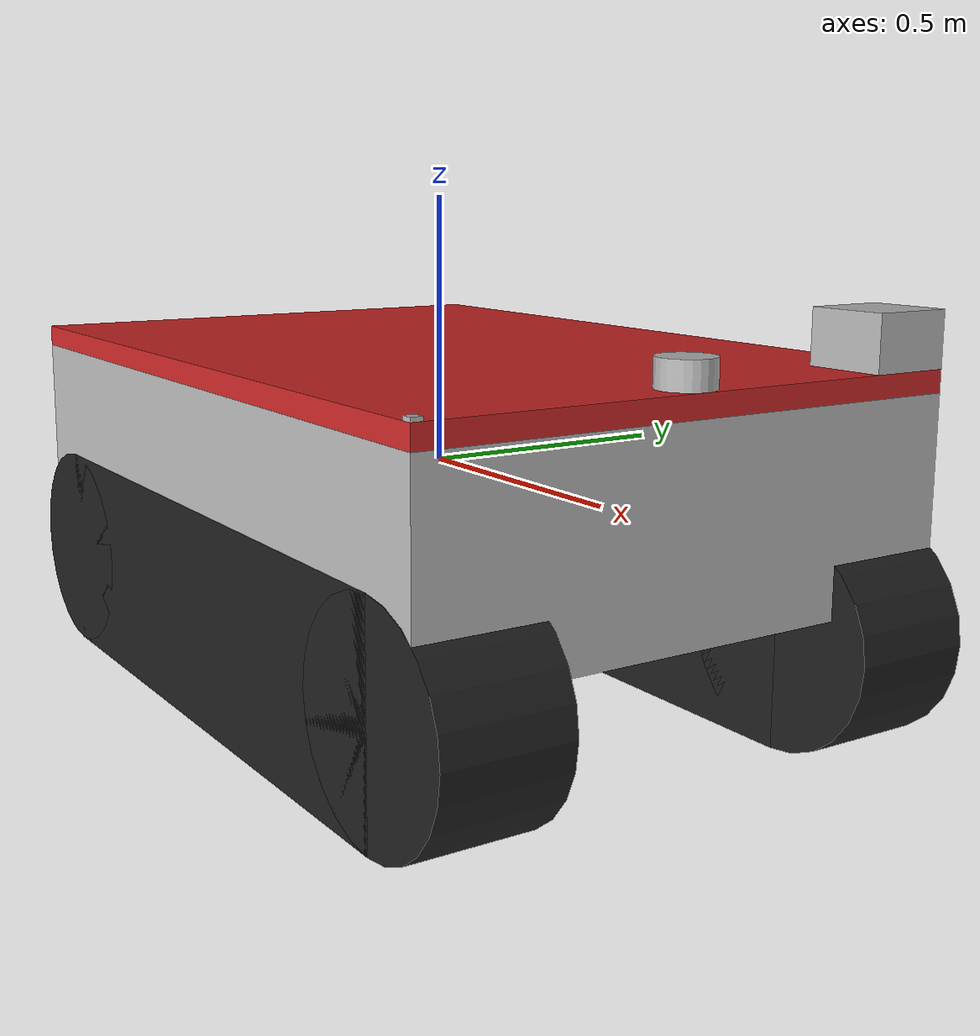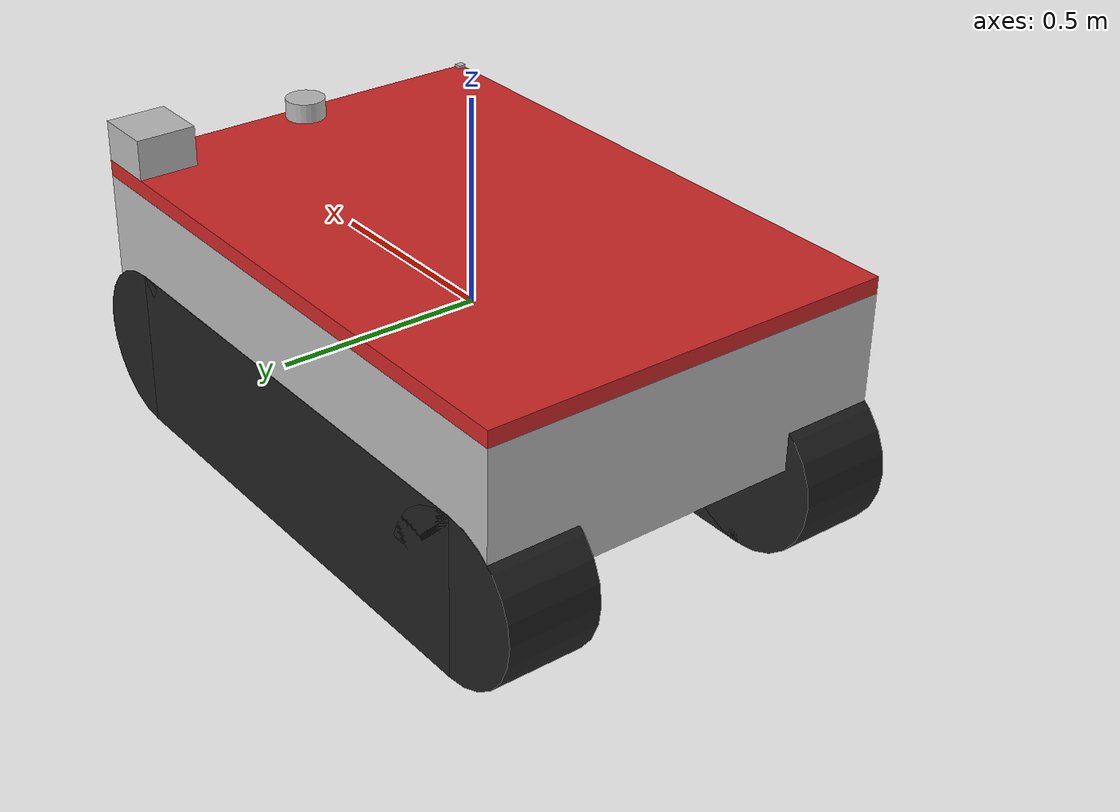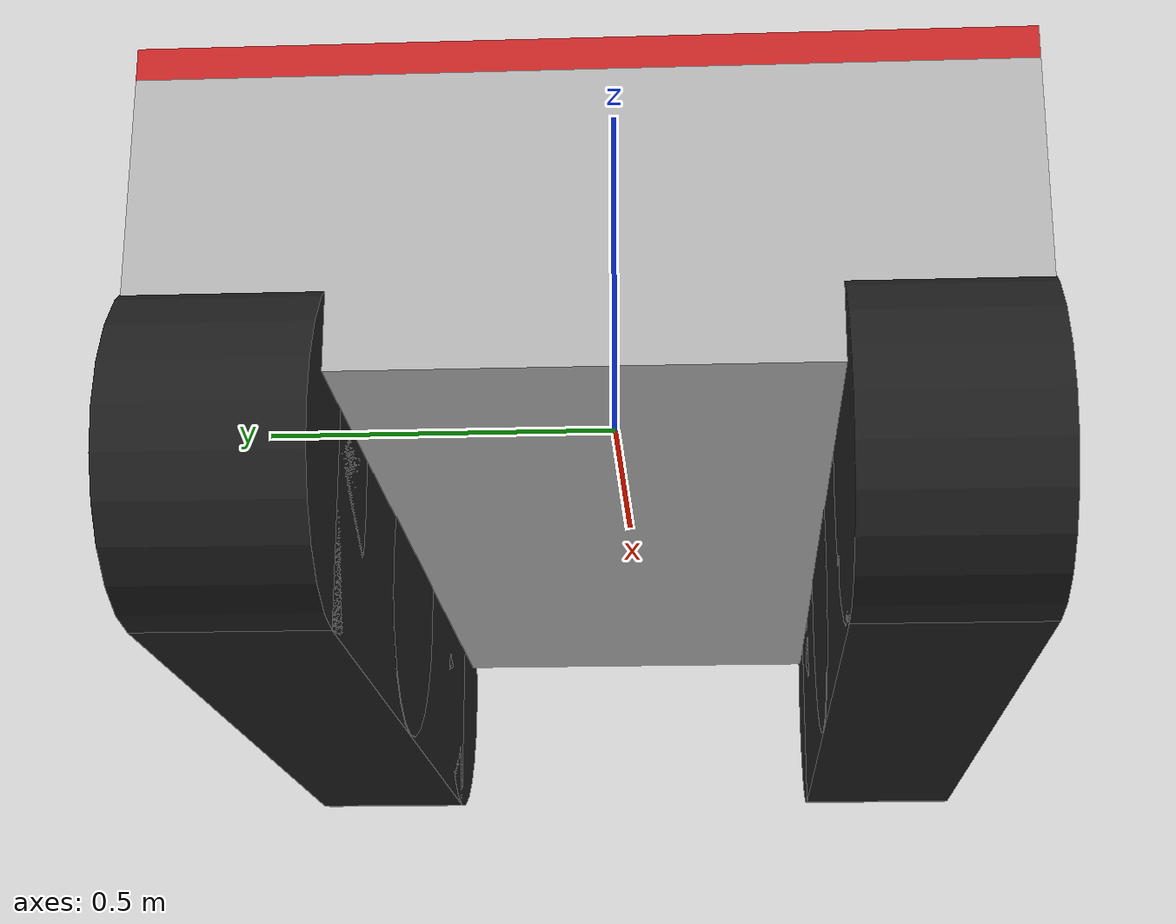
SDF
<sdf version='1.7'>
  <model name='my_robot'>
    <link name='base_link'>
      <inertial>
        <pose>0.007562 0.002963 -0.035161 1.5708 -0 1.5708</pose>
        <mass>262.9</mass>
        <inertia>
          <ixx>65.0051</ixx>
          <ixy>-0.242417</ixy>
          <ixz>-0.513369</ixz>
          <iyy>86.0756</iyy>
          <iyz>-0.587528</iyz>
          <izz>33.8241</izz>
        </inertia>
      </inertial>
      <collision name='base_link_collision'>
        <pose>0 0 0 0 -0 0</pose>
        <geometry>
          <box>
            <size>1.5 1.03 0.36</size>
          </box>
        </geometry>
      </collision>
      <collision name='base_link_fixed_joint_lump__left_wheel_box_link_collision_1'>
        <pose>0 0.401 -0.24 1.5708 -0 0</pose>
        <geometry>
          <box>
            <size>1.25 0.4 0.23</size>
          </box>
        </geometry>
        <surface>
          <contact>
            <ode/>
          </contact>
          <friction>
            <ode>
              <mu>0.1</mu>
              <mu2>0.1</mu2>
            </ode>
          </friction>
        </surface>
      </collision>
      <collision name='base_link_fixed_joint_lump__left_wheel_additional_f_wheel_link_collision_2'>
        <pose>0.625 0.401 -0.24 1.5708 -0 0</pose>
        <geometry>
          <cylinder>
            <length>0.23</length>
            <radius>0.2</radius>
          </cylinder>
        </geometry>
        <surface>
          <contact>
            <ode/>
          </contact>
          <friction>
            <ode>
              <mu>0.2</mu>
              <mu2>0.2</mu2>
            </ode>
          </friction>
        </surface>
      </collision>
      <collision name='base_link_fixed_joint_lump__left_wheel_additional_r_wheel_link_collision_3'>
        <pose>-0.625 0.401 -0.24 1.5708 -0 0</pose>
        <geometry>
          <cylinder>
            <length>0.23</length>
            <radius>0.2</radius>
          </cylinder>
        </geometry>
        <surface>
          <contact>
            <ode/>
          </contact>
          <friction>
            <ode>
              <mu>0.2</mu>
              <mu2>0.2</mu2>
            </ode>
          </friction>
        </surface>
      </collision>
      <collision name='base_link_fixed_joint_lump__plate_link_collision_4'>
        <pose>0 0 0.2 0 -0 0</pose>
        <geometry>
          <box>
            <size>1.5 1.03 0.04</size>
          </box>
        </geometry>
        <surface>
          <contact>
            <ode/>
          </contact>
          <friction>
            <ode/>
          </friction>
        </surface>
      </collision>
      <collision name='base_link_fixed_joint_lump__right_wheel_box_link_collision_5'>
        <pose>0 -0.401 -0.24 1.5708 -0 0</pose>
        <geometry>
          <box>
            <size>1.25 0.4 0.23</size>
          </box>
        </geometry>
        <surface>
          <contact>
            <ode/>
          </contact>
          <friction>
            <ode>
              <mu>0.1</mu>
              <mu2>0.1</mu2>
            </ode>
          </friction>
        </surface>
      </collision>
      <collision name='base_link_fixed_joint_lump__right_wheel_additional_f_wheel_link_collision_6'>
        <pose>0.625 -0.401 -0.24 1.5708 -0 0</pose>
        <geometry>
          <cylinder>
            <length>0.23</length>
            <radius>0.2</radius>
          </cylinder>
        </geometry>
        <surface>
          <contact>
            <ode/>
          </contact>
          <friction>
            <ode>
              <mu>0.2</mu>
              <mu2>0.2</mu2>
            </ode>
          </friction>
        </surface>
      </collision>
      <collision name='base_link_fixed_joint_lump__right_wheel_additional_r_wheel_link_collision_7'>
        <pose>-0.625 -0.401 -0.24 1.5708 -0 0</pose>
        <geometry>
          <cylinder>
            <length>0.23</length>
            <radius>0.2</radius>
          </cylinder>
        </geometry>
        <surface>
          <contact>
            <ode/>
          </contact>
          <friction>
            <ode>
              <mu>0.2</mu>
              <mu2>0.2</mu2>
            </ode>
          </friction>
        </surface>
      </collision>
      <visual name='base_link_visual'>
        <pose>0 0 0 0 -0 0</pose>
        <geometry>
          <box>
            <size>1.5 1.03 0.36</size>
          </box>
        </geometry>
      </visual>
      <visual name='base_link_fixed_joint_lump__left_wheel_box_link_visual_1'>
        <pose>0 0.401 -0.24 1.5708 -0 0</pose>
        <geometry>
          <box>
            <size>1.25 0.4 0.23</size>
          </box>
        </geometry>
        <material>
          <script>
            <name>Gazebo/Black</name>
            <uri>file://media/materials/scripts/gazebo.material</uri>
          </script>
        </material>
      </visual>
      <visual name='base_link_fixed_joint_lump__left_wheel_additional_f_wheel_link_visual_2'>
        <pose>0.625 0.401 -0.24 1.5708 -0 0</pose>
        <geometry>
          <cylinder>
            <length>0.23</length>
            <radius>0.2</radius>
          </cylinder>
        </geometry>
        <material>
          <script>
            <name>Gazebo/Black</name>
            <uri>file://media/materials/scripts/gazebo.material</uri>
          </script>
        </material>
      </visual>
      <visual name='base_link_fixed_joint_lump__left_wheel_additional_r_wheel_link_visual_3'>
        <pose>-0.625 0.401 -0.24 1.5708 -0 0</pose>
        <geometry>
          <cylinder>
            <length>0.23</length>
            <radius>0.2</radius>
          </cylinder>
        </geometry>
        <material>
          <script>
            <name>Gazebo/Black</name>
            <uri>file://media/materials/scripts/gazebo.material</uri>
          </script>
        </material>
      </visual>
      <visual name='base_link_fixed_joint_lump__plate_link_visual_4'>
        <pose>0 0 0.2 0 -0 0</pose>
        <geometry>
          <box>
            <size>1.5 1.03 0.04</size>
          </box>
        </geometry>
        <material>
          <script>
            <name>Gazebo/Red</name>
            <uri>file://media/materials/scripts/gazebo.material</uri>
          </script>
        </material>
      </visual>
      <visual name='base_link_fixed_joint_lump__gps_link_visual_5'>
        <pose>0.675 0.44 0.27 0 -0 0</pose>
        <geometry>
          <box>
            <size>0.15 0.15 0.1</size>
          </box>
        </geometry>
      </visual>
      <visual name='base_link_fixed_joint_lump__imu_link_visual_6'>
        <pose>0.74 -0.505 0.2235 0 -0 0</pose>
        <geometry>
          <box>
            <size>0.02 0.02 0.007</size>
          </box>
        </geometry>
      </visual>
      <visual name='base_link_fixed_joint_lump__lidar_link_visual_7'>
        <pose>0.7 0 0.245 0 -0 0</pose>
        <geometry>
          <cylinder>
            <length>0.05</length>
            <radius>0.05</radius>
          </cylinder>
        </geometry>
      </visual>
      <visual name='base_link_fixed_joint_lump__right_wheel_box_link_visual_8'>
        <pose>0 -0.401 -0.24 1.5708 -0 0</pose>
        <geometry>
          <box>
            <size>1.25 0.4 0.23</size>
          </box>
        </geometry>
        <material>
          <script>
            <name>Gazebo/Black</name>
            <uri>file://media/materials/scripts/gazebo.material</uri>
          </script>
        </material>
      </visual>
      <visual name='base_link_fixed_joint_lump__right_wheel_additional_f_wheel_link_visual_9'>
        <pose>0.625 -0.401 -0.24 1.5708 -0 0</pose>
        <geometry>
          <cylinder>
            <length>0.23</length>
            <radius>0.2</radius>
          </cylinder>
        </geometry>
        <material>
          <script>
            <name>Gazebo/Black</name>
            <uri>file://media/materials/scripts/gazebo.material</uri>
          </script>
        </material>
      </visual>
      <visual name='base_link_fixed_joint_lump__right_wheel_additional_r_wheel_link_visual_10'>
        <pose>-0.625 -0.401 -0.24 1.5708 -0 0</pose>
        <geometry>
          <cylinder>
            <length>0.23</length>
            <radius>0.2</radius>
          </cylinder>
        </geometry>
        <material>
          <script>
            <name>Gazebo/Black</name>
            <uri>file://media/materials/scripts/gazebo.material</uri>
          </script>
        </material>
      </visual>
      <sensor name='imu_sensor' type='imu'>
        <plugin name='imu_plugin' filename='libgazebo_ros_imu_sensor.so'>
          <ros>
            <namespace>/demo</namespace>
            <remapping>~/out:=imu</remapping>
          </ros>
          <initial_orientation_as_reference>0</initial_orientation_as_reference>
        </plugin>
        <always_on>1</always_on>
        <update_rate>100</update_rate>
        <visualize>1</visualize>
        <imu>
          <angular_velocity>
            <x>
              <noise type='gaussian'>
                <mean>0</mean>
                <stddev>0.0002</stddev>
                <bias_mean>7.5e-06</bias_mean>
                <bias_stddev>8e-07</bias_stddev>
              </noise>
            </x>
            <y>
              <noise type='gaussian'>
                <mean>0</mean>
                <stddev>0.0002</stddev>
                <bias_mean>7.5e-06</bias_mean>
                <bias_stddev>8e-07</bias_stddev>
              </noise>
            </y>
            <z>
              <noise type='gaussian'>
                <mean>0</mean>
                <stddev>0.0002</stddev>
                <bias_mean>7.5e-06</bias_mean>
                <bias_stddev>8e-07</bias_stddev>
              </noise>
            </z>
          </angular_velocity>
          <linear_acceleration>
            <x>
              <noise type='gaussian'>
                <mean>0</mean>
                <stddev>0.017</stddev>
                <bias_mean>0.1</bias_mean>
                <bias_stddev>0.001</bias_stddev>
              </noise>
            </x>
            <y>
              <noise type='gaussian'>
                <mean>0</mean>
                <stddev>0.017</stddev>
                <bias_mean>0.1</bias_mean>
                <bias_stddev>0.001</bias_stddev>
              </noise>
            </y>
            <z>
              <noise type='gaussian'>
                <mean>0</mean>
                <stddev>0.017</stddev>
                <bias_mean>0.1</bias_mean>
                <bias_stddev>0.001</bias_stddev>
              </noise>
            </z>
          </linear_acceleration>
        </imu>
        <pose>0.74 -0.505 0.2235 0 -0 0</pose>
      </sensor>
      <sensor name='lidar' type='ray'>
        <always_on>1</always_on>
        <visualize>1</visualize>
        <update_rate>5</update_rate>
        <ray>
          <scan>
            <horizontal>
              <samples>360</samples>
              <resolution>1</resolution>
              <min_angle>1.407</min_angle>
              <max_angle>-1.407</max_angle>
            </horizontal>
          </scan>
          <range>
            <min>0.12</min>
            <max>3.5</max>
            <resolution>0.015</resolution>
          </range>
          <noise>
            <type>gaussian</type>
            <mean>0</mean>
            <stddev>0.01</stddev>
          </noise>
        </ray>
        <plugin name='scan' filename='libgazebo_ros_ray_sensor.so'>
          <ros>
            <remapping>~/out:=scan</remapping>
          </ros>
          <output_type>sensor_msgs/LaserScan</output_type>
          <frame_name>lidar_link</frame_name>
        </plugin>
        <pose>0.7 0 0.245 0 -0 0</pose>
      </sensor>
    </link>
    <joint name='left_wheel_joint' type='revolute'>
      <pose relative_to='base_link'>0 0.4 -0.24 0 -0 0</pose>
      <parent>base_link</parent>
      <child>left_wheel_link</child>
      <axis>
        <xyz>0 1 0</xyz>
        <limit>
          <lower>-1e+16</lower>
          <upper>1e+16</upper>
        </limit>
        <dynamics>
          <spring_reference>0</spring_reference>
          <spring_stiffness>0</spring_stiffness>
        </dynamics>
      </axis>
    </joint>
    <link name='left_wheel_link'>
      <pose relative_to='left_wheel_joint'>0 0 0 0 -0 0</pose>
      <inertial>
        <pose>0 0 0 1.5708 -0 0</pose>
        <mass>25</mass>
        <inertia>
          <ixx>0.360208</ixx>
          <ixy>0</ixy>
          <ixz>0</ixz>
          <iyy>0.360208</iyy>
          <iyz>0</iyz>
          <izz>0.5</izz>
        </inertia>
      </inertial>
      <collision name='left_wheel_link_collision'>
        <pose>0 0 0 1.5708 -0 0</pose>
        <geometry>
          <cylinder>
            <length>0.23</length>
            <radius>0.2</radius>
          </cylinder>
        </geometry>
        <surface>
          <contact>
            <ode/>
          </contact>
          <friction>
            <ode>
              <mu>8000</mu>
              <mu2>8000</mu2>
            </ode>
          </friction>
        </surface>
      </collision>
      <visual name='left_wheel_link_visual'>
        <pose>0 0 0 1.5708 -0 0</pose>
        <geometry>
          <cylinder>
            <length>0.23</length>
            <radius>0.2</radius>
          </cylinder>
        </geometry>
        <material>
          <script>
            <name>Gazebo/Black</name>
            <uri>file://media/materials/scripts/gazebo.material</uri>
          </script>
        </material>
      </visual>
    </link>
    <joint name='right_wheel_joint' type='revolute'>
      <pose relative_to='base_link'>0 -0.4 -0.24 0 -0 0</pose>
      <parent>base_link</parent>
      <child>right_wheel_link</child>
      <axis>
        <xyz>0 1 0</xyz>
        <limit>
          <lower>-1e+16</lower>
          <upper>1e+16</upper>
        </limit>
        <dynamics>
          <spring_reference>0</spring_reference>
          <spring_stiffness>0</spring_stiffness>
        </dynamics>
      </axis>
    </joint>
    <link name='right_wheel_link'>
      <pose relative_to='right_wheel_joint'>0 0 0 0 -0 0</pose>
      <inertial>
        <pose>0 0 0 1.5708 -0 0</pose>
        <mass>25</mass>
        <inertia>
          <ixx>0.360208</ixx>
          <ixy>0</ixy>
          <ixz>0</ixz>
          <iyy>0.360208</iyy>
          <iyz>0</iyz>
          <izz>0.5</izz>
        </inertia>
      </inertial>
      <collision name='right_wheel_link_collision'>
        <pose>0 0 0 1.5708 -0 0</pose>
        <geometry>
          <cylinder>
            <length>0.23</length>
            <radius>0.2</radius>
          </cylinder>
        </geometry>
        <surface>
          <contact>
            <ode/>
          </contact>
          <friction>
            <ode>
              <mu>8000</mu>
              <mu2>8000</mu2>
            </ode>
          </friction>
        </surface>
      </collision>
      <visual name='right_wheel_link_visual'>
        <pose>0 0 0 1.5708 -0 0</pose>
        <geometry>
          <cylinder>
            <length>0.23</length>
            <radius>0.2</radius>
          </cylinder>
        </geometry>
        <material>
          <script>
            <name>Gazebo/Black</name>
            <uri>file://media/materials/scripts/gazebo.material</uri>
          </script>
        </material>
      </visual>
    </link>
    <static>0</static>
    <plugin name='differential_drive_controller' filename='libgazebo_ros_diff_drive.so'>
      <ros>
        <remapping>cmd_vel:=cmd_vel</remapping>
      </ros>
      <update_rate>30</update_rate>
      <left_joint>left_wheel_joint</left_joint>
      <right_joint>right_wheel_joint</right_joint>
      <wheel_separation>0.8</wheel_separation>
      <wheel_diameter>0.4</wheel_diameter>
      <max_wheel_torque>2000</max_wheel_torque>
      <max_wheel_acceleration>2.0</max_wheel_acceleration>
      <command_topic>cmd_vel</command_topic>
      <publish_odom>1</publish_odom>
      <publish_odom_tf>0</publish_odom_tf>
      <publish_wheel_tf>1</publish_wheel_tf>
      <odometry_topic>odom</odometry_topic>
      <odometry_frame>odom</odometry_frame>
      <odometry_source>0</odometry_source>
      <robot_base_frame>base_link</robot_base_frame>
    </plugin>
  </model>
</sdf>
